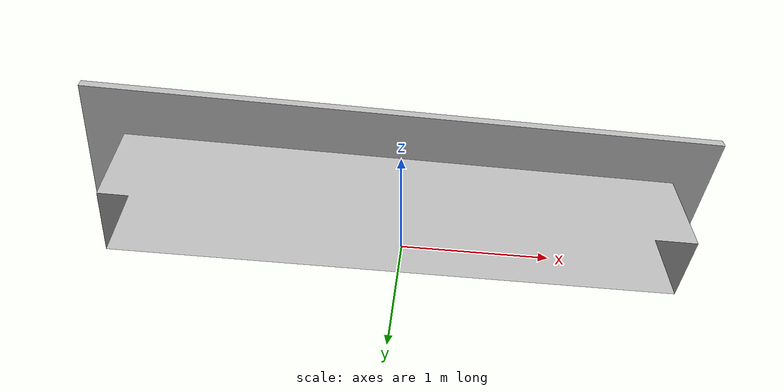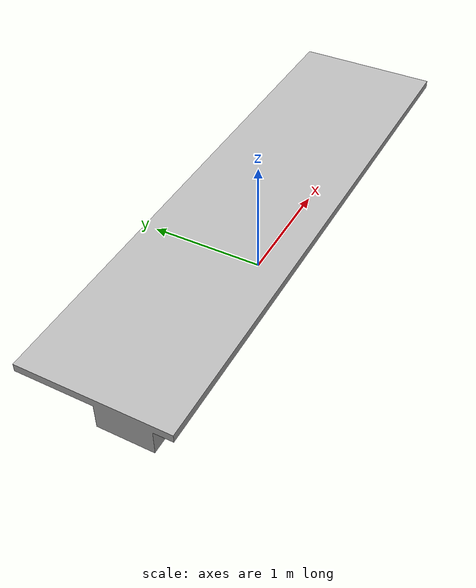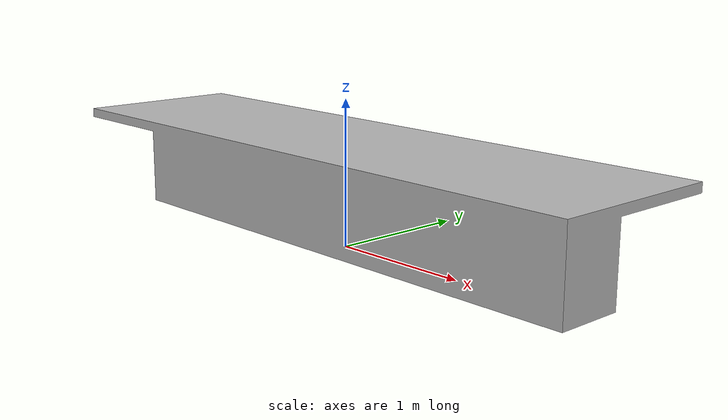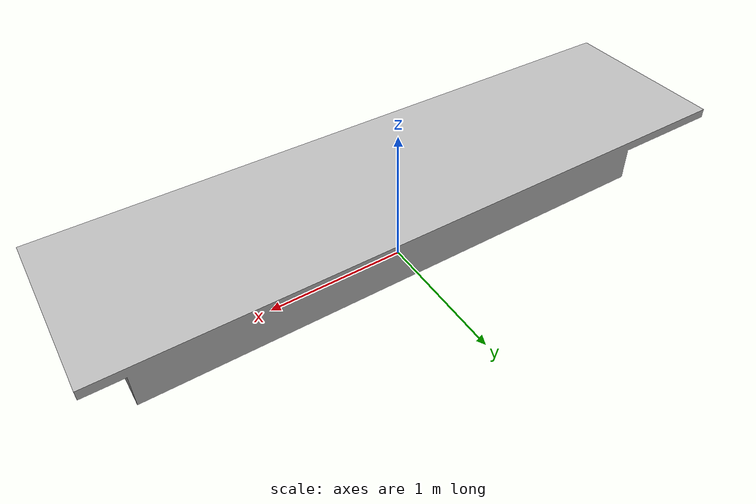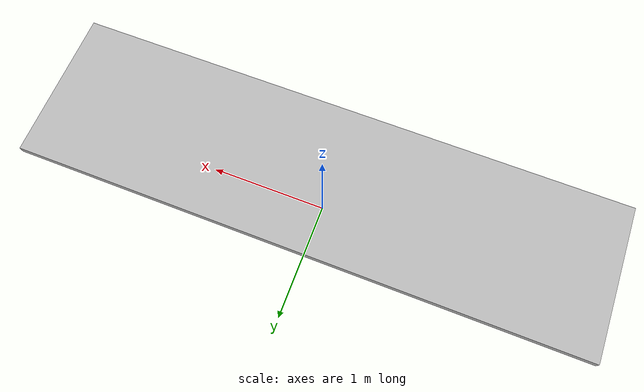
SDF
<sdf version="1.5">
  <model name="conference_table_large">
    <static>true</static>
    <link name="link">
     <collision name="collision">
        <pose>-0.000328 -0.000776 0.367474 0 0 0</pose>
        <geometry>
          <box>
            <size>4.520320 1.217630 0.742359</size>
          </box>
        </geometry>
      </collision>
      <visual name="visual">
        <geometry>
          <mesh>
            <uri>model://conference_table_large/meshes/conference_table_large.obj</uri>
            <scale>0.01 0.01 0.01</scale>
          </mesh>
        </geometry>
      </visual>
    </link>
  </model>
</sdf>
